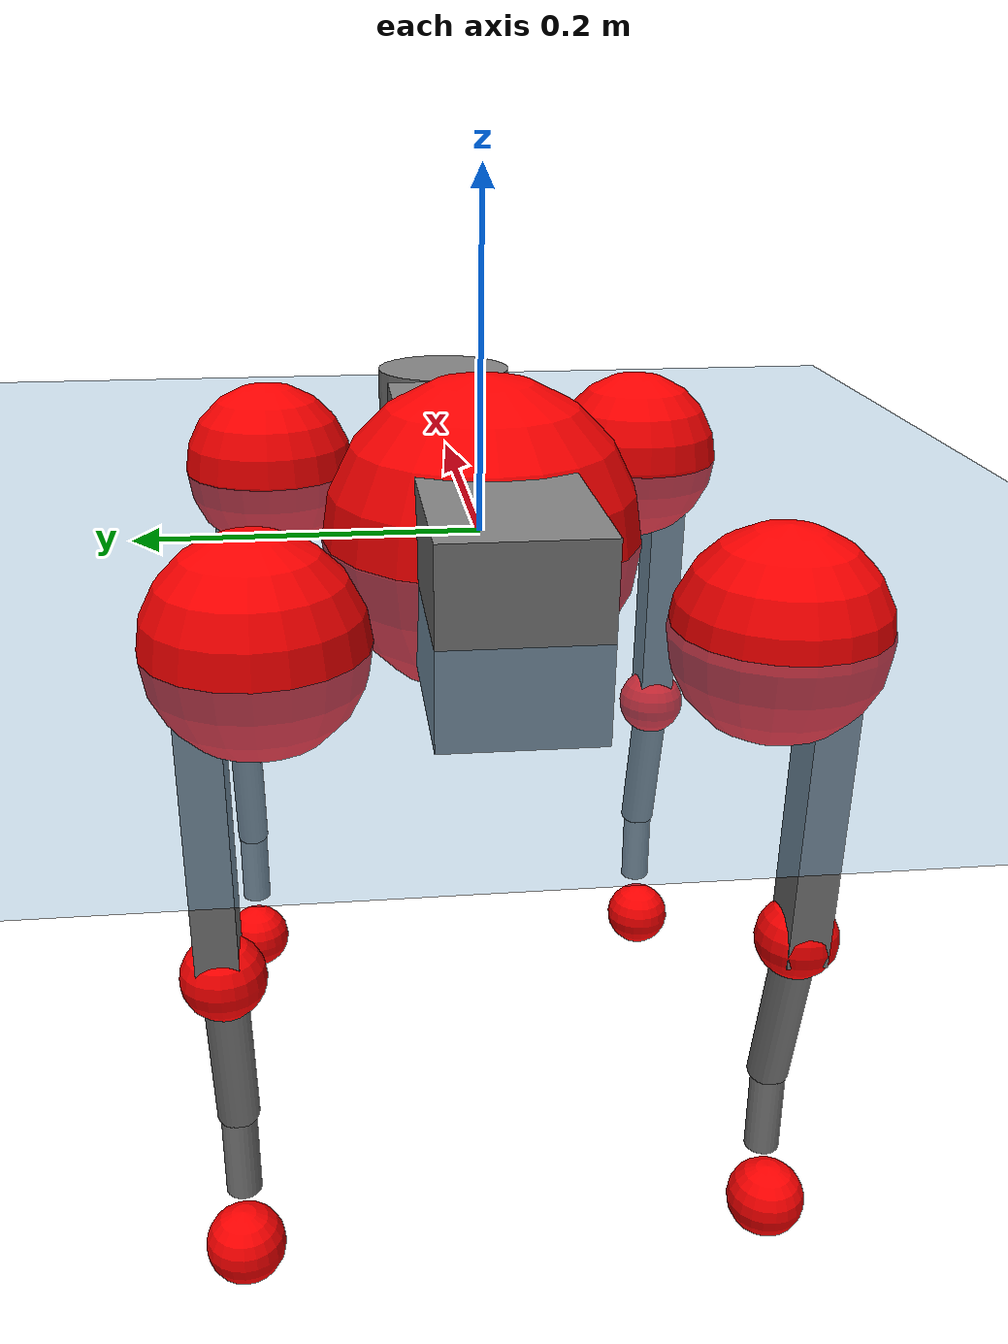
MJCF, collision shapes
<mujoco model="go2">
  <compiler angle="radian" assetdir="assets" balanceinertia="true" inertiafromgeom="false"/>

  <option timestep="0.005" density="1.2" viscosity="2e-05"/>

  <size nkey="1"/>

  <visual>
    <quality shadowsize="8192"/>
    <map shadowclip="0.5"/>
  </visual>

  <default>
    <default class="/">
      <geom contype="0" conaffinity="0" group="1" solref="-1000 -80"/>
      <site size="0.01 0.005 0.005" group="5"/>
      <general forcelimited="true" biastype="affine" gainprm="20" biasprm="0 -20 -0.5"/>
      <default class="go2">
        <joint armature="0.01" damping="0.01" frictionloss="0.2"/>
        <geom condim="1" margin="0.001"/>
        <default class="visual">
          <geom type="mesh" group="2"/>
        </default>
        <default class="collision">
          <geom group="3"/>
          <default class="foot">
            <geom size="0.022 0 0" condim="6" priority="1" friction="0.8 0.02 0.01" solimp="0.015 1 0.022"/>
          </default>
        </default>
        <default class="reward_collision_sphere">
          <geom group="5" rgba="1 0 0 1"/>
        </default>
      </default>
    </default>
  </default>

  <asset>
    <texture type="skybox" colorspace="auto" name="//unnamed_texture_0" builtin="gradient" rgb1="0.95 0.95 0.95" rgb2="0.95 0.95 0.95" width="100" height="600"/>
    <texture type="2d" colorspace="auto" name="texplane" builtin="checker" rgb1="0.345 0.575 0.748" rgb2="0.345 0.575 0.748" markrgb="1 1 1" width="512" height="512"/>
    <material name="MatPlane" class="/" texture="texplane" texuniform="true" texrepeat="2 2" specular="0.9"/>
    <material name="metal" class="/" rgba="0.9 0.95 0.95 1"/>
    <material name="black" class="/" rgba="0 0 0 1"/>
    <material name="white" class="/"/>
    <material name="gray" class="/" rgba="0.671705 0.692426 0.77427 1"/>
    <mesh name="base_0" class="/" file="base_0.obj"/>
    <mesh name="base_1" class="/" file="base_1.obj"/>
    <mesh name="base_2" class="/" file="base_2.obj"/>
    <mesh name="base_3" class="/" file="base_3.obj"/>
    <mesh name="base_4" class="/" file="base_4.obj"/>
    <mesh name="hip_0" class="/" file="hip_0.obj"/>
    <mesh name="hip_1" class="/" file="hip_1.obj"/>
    <mesh name="thigh_0" class="/" file="thigh_0.obj"/>
    <mesh name="thigh_1" class="/" file="thigh_1.obj"/>
    <mesh name="thigh_mirror_0" class="/" file="thigh_mirror_0.obj"/>
    <mesh name="thigh_mirror_1" class="/" file="thigh_mirror_1.obj"/>
    <mesh name="calf_0" class="/" file="calf_0.obj"/>
    <mesh name="calf_1" class="/" file="calf_1.obj"/>
    <mesh name="calf_mirror_0" class="/" file="calf_mirror_0.obj"/>
    <mesh name="calf_mirror_1" class="/" file="calf_mirror_1.obj"/>
    <mesh name="foot" class="/" file="foot.obj"/>
  </asset>

  <worldbody>
    <geom name="floor" class="/" size="100 100 0.125" type="plane" group="0" material="MatPlane"/>
    <light name="toplight_shadow" class="/" pos="0 0 5" dir="0.0990148 0.0990148 -0.990148" type="directional" ambient="0.04 0.04 0.04" diffuse="0.55 0.55 0.55" specular="0.12 0.12 0.12"/>
    <light name="toplight_fill" class="/" pos="0 0 5" dir="0.0990148 0.0990148 -0.990148" type="directional" castshadow="false" ambient="0.04 0.04 0.04" diffuse="0.3 0.3 0.3" specular="0.08 0.08 0.08"/>
    <body name="trunk" childclass="go2" pos="-0.00381128 -0.000564335 -0.00193948" quat="0.999999 4.82692e-05 0.000868829 -0.00092655">
      <inertial pos="0.0204639 0.002249 -0.00626193" quat="-0.0079917 0.719288 -0.000232951 0.694666" mass="6.07058" diaginertia="0.0414805 0.157652 0.0136784"/>
      <joint name="//unnamed_joint_0" type="free" armature="0" damping="0" frictionloss="0"/>
      <geom name="//unnamed_geom_1" class="visual" material="black" mesh="base_0"/>
      <geom name="//unnamed_geom_2" class="visual" material="black" mesh="base_1"/>
      <geom name="//unnamed_geom_3" class="visual" material="black" mesh="base_2"/>
      <geom name="//unnamed_geom_4" class="visual" material="white" mesh="base_3"/>
      <geom name="//unnamed_geom_5" class="visual" material="gray" mesh="base_4"/>
      <geom name="trunk_1" class="collision" size="0.175273 0.0435621 0.0531131" type="box"/>
      <geom name="trunk_2" class="collision" size="0.0465904 0.0419314" pos="0.234314 0 0.00879658" type="cylinder"/>
      <geom name="trunk_3" class="collision" size="0.043795" pos="0.240892 0 -0.0527795"/>
      <geom name="//unnamed_geom_9" class="reward_collision_sphere" size="0.0931809"/>
      <geom name="//unnamed_geom_10" class="reward_collision_sphere" size="0.0559085" pos="0.230204 0 -0.0395846"/>
      <site name="imu" pos="-0.0251704 0.00724061 0.026412" size="0.00931809"/>
      <camera name="track" pos="0 -2.18722 0" quat="0.707107 0.707107 0 0" mode="trackcom"/>
      <camera name="ego_camera" pos="0.256513 0 0.0395846" quat="-0.5 -0.5 0.5 0.5"/>
      <body name="FL_hip" pos="0.157307 0.0484254 0.00208274" quat="0.999999 0.000280053 -0.000333607 0.000968383">
        <inertial pos="-0.00152798 0.0023247 -0.00252563" quat="0.499404 0.501541 0.505607 0.49337" mass="0.551893" diaginertia="0.000325747 0.000981123 0.000252882"/>
        <joint name="FL_hip_joint" pos="0 0 0" axis="0.999802 0.0189688 -0.00603077" range="-1.1161 1.02047" armature="0.0096493" damping="0.0183553" frictionloss="0.18467"/>
        <geom name="//unnamed_geom_11" class="visual" material="metal" mesh="hip_0"/>
        <geom name="//unnamed_geom_12" class="visual" material="gray" mesh="hip_1"/>
        <geom name="//unnamed_geom_13" class="collision" size="0.0428632 0.0186362" pos="0 0.087489 0" quat="0.707107 0.707107 0 0" type="cylinder"/>
        <geom name="//unnamed_geom_14" class="reward_collision_sphere" size="0.0559085" pos="0 0.0765529 0"/>
        <body name="FL_thigh" pos="0.00133887 0.103763 0.00108375" quat="1 0.00062533 7.68199e-05 -0.000262743">
          <inertial pos="-0.00318807 -0.0250337 -0.0264037" quat="0.830014 0.0847254 -0.0210157 0.550869" mass="0.929254" diaginertia="0.00228841 0.00922193 0.000439182"/>
          <joint name="FL_thigh_joint" pos="0 0 0" axis="8.42426e-05 0.999926 -0.0121815" stiffness="0.0229198" range="-1.52893 3.48345" armature="0.00827537" damping="0" frictionloss="0.162461"/>
          <geom name="//unnamed_geom_15" class="visual" material="metal" mesh="thigh_0"/>
          <geom name="//unnamed_geom_16" class="visual" material="gray" mesh="thigh_1"/>
          <geom name="//unnamed_geom_17" class="collision" size="0.0992376 0.0114147 0.0158407" pos="0 0 -0.0936835" quat="0.707107 0 0.707107 0" type="box"/>
          <body name="FL_calf" pos="0.00012672 0.00227877 -0.188708" quat="1 -0.000342958 0.000185869 -0.000149706">
            <inertial pos="0.00621995 0.000198618 -0.123765" quat="0.711107 0.0131664 -0.0070668 0.702925" mass="0.194277" diaginertia="0.00052348 0.00219035 2.74193e-05"/>
            <joint name="FL_calf_joint" pos="0 0 0" axis="-0.00929164 0.999795 -0.0180131" stiffness="0.00262856" range="-2.67472 -0.822905" armature="0.0100285" damping="0.0130258" frictionloss="0.201349"/>
            <geom name="//unnamed_geom_18" class="visual" material="gray" mesh="calf_0"/>
            <geom name="//unnamed_geom_19" class="visual" material="black" mesh="calf_1"/>
            <geom name="FL_calf0" class="collision" size="0.0111817 0.0559085" pos="0.00657724 0 -0.0527795" quat="0.994493 0 -0.104807 0" type="cylinder"/>
            <geom name="//unnamed_geom_21" class="collision" size="0.0102499 0.0302838" pos="0.0164431 0 -0.130189" quat="0.999688 0 0.0249974 0" type="cylinder"/>
            <geom name="//unnamed_geom_22" class="visual" pos="0 0 -0.187367" quat="1 0 0 0" material="black" mesh="foot"/>
            <geom name="FL_foot" class="foot" size="0.0157764" pos="-0.00164431 0 -0.187367"/>
            <geom name="//unnamed_geom_24" class="reward_collision_sphere" size="0.0232952"/>
            <geom name="//unnamed_geom_25" class="reward_collision_sphere" size="0.0232952" pos="-0.00164431 0 -0.187367"/>
            <site name="FL_foot" class="foot" pos="-0.00164431 0 -0.187367" size="0.00931809"/>
          </body>
        </body>
      </body>
      <body name="FR_hip" pos="0.161875 -0.0487129 0.00305527" quat="1 0.00024802 0.000227289 -0.000199684">
        <inertial pos="-0.00274339 -0.000281688 0.000132697" quat="0.494348 0.503487 0.502479 0.499636" mass="0.553571" diaginertia="0.0003278 0.000914919 0.000246563"/>
        <joint name="FR_hip_joint" pos="0 0 0" axis="0.999967 0.00615065 -0.00525292" range="-0.999202 1.05659" armature="0.0104387" damping="0.0151425" frictionloss="0.199214"/>
        <geom name="//unnamed_geom_26" class="visual" pos="0 1.86388e-09 7.99459e-08" quat="4.63268e-05 1 0 0" material="metal" mesh="hip_0"/>
        <geom name="//unnamed_geom_27" class="visual" pos="0 3.02158e-09 -1.97737e-07" quat="4.63268e-05 1 0 0" material="gray" mesh="hip_1"/>
        <geom name="//unnamed_geom_28" class="collision" size="0.0428632 0.0186362" pos="0 -0.087489 0" quat="0.707107 0.707107 0 0" type="cylinder"/>
        <geom name="//unnamed_geom_29" class="reward_collision_sphere" size="0.0559085" pos="0 -0.0765529 0"/>
        <body name="FR_thigh" pos="-0.000244091 -0.100848 0.00201546" quat="1 -4.18077e-05 -0.000116033 -0.000182849">
          <inertial pos="-0.00156906 0.0248369 -0.029675" quat="0.550886 -0.0213093 0.087447 0.829713" mass="0.920115" diaginertia="0.00215568 0.00863522 0.000445408"/>
          <joint name="FR_thigh_joint" pos="0 0 0" axis="-0.00737409 -0.999882 0.0134556" range="-3.52747 1.55156" armature="0.00908927" damping="0.000606805" frictionloss="0.206326"/>
          <geom name="//unnamed_geom_30" class="visual" material="metal" mesh="thigh_mirror_0"/>
          <geom name="//unnamed_geom_31" class="visual" material="gray" mesh="thigh_mirror_1"/>
          <geom name="//unnamed_geom_32" class="collision" size="0.0992376 0.0114147 0.0158407" pos="0 0 -0.0936835" quat="0.707107 0 0.707107 0" type="box"/>
          <body name="FR_calf" pos="-0.00256827 0.000677746 -0.189707" quat="1 0.000186294 -8.48235e-06 7.61131e-05">
            <inertial pos="0.0057626 0.00128029 -0.125206" quat="0.704749 -0.00527556 -0.00828974 0.709388" mass="0.196264" diaginertia="0.000559327 0.00229418 2.81174e-05"/>
            <joint name="FR_calf_joint" pos="0 0 0" axis="0.00288942 -0.999916 0.0126251" stiffness="0.0135108" range="0.846979 2.72362" armature="0.00808051" damping="0.00430372" frictionloss="0.16465"/>
            <geom name="//unnamed_geom_33" class="visual" material="gray" mesh="calf_mirror_0"/>
            <geom name="//unnamed_geom_34" class="visual" material="black" mesh="calf_mirror_1"/>
            <geom name="FR_calf0" class="collision" size="0.0121135 0.0559085" pos="0.00822156 0 -0.0527795" quat="0.995004 0 -0.0998334 0" type="cylinder"/>
            <geom name="//unnamed_geom_36" class="collision" size="0.0102499 0.0302838" pos="0.0164431 0 -0.130189" quat="0.999688 0 0.0249974 0" type="cylinder"/>
            <geom name="//unnamed_geom_37" class="visual" pos="0 0 -0.187367" quat="1 0 0 0" material="black" mesh="foot"/>
            <geom name="FR_foot" class="foot" size="0.0203019" pos="-0.00164431 0 -0.187367"/>
            <geom name="//unnamed_geom_39" class="reward_collision_sphere" size="0.0232952"/>
            <geom name="//unnamed_geom_40" class="reward_collision_sphere" size="0.0232952" pos="-0.00164431 0 -0.187367"/>
            <site name="FR_foot" class="foot" pos="-0.00164431 0 -0.187367" size="0.00931809"/>
          </body>
        </body>
      </body>
      <body name="RL_hip" pos="-0.159256 0.0502287 0.000612273" quat="1 5.85396e-05 -2.73144e-05 2.91924e-05">
        <inertial pos="0.00664678 -0.000811556 0.000213291" quat="0.491223 0.510063 0.504536 0.493943" mass="0.54582" diaginertia="0.000346416 0.000967953 0.000253248"/>
        <joint name="RL_hip_joint" pos="0 0 0" axis="-0.999715 0.0215549 -0.0102345" range="-1.07957 1.02348" armature="0.00977056" damping="0" frictionloss="0.168058"/>
        <geom name="//unnamed_geom_41" class="visual" pos="5.00936e-10 0 9.81949e-08" quat="4.63268e-05 0 1 0" material="metal" mesh="hip_0"/>
        <geom name="//unnamed_geom_42" class="visual" pos="8.12077e-10 0 8.70849e-08" quat="4.63268e-05 0 1 0" material="gray" mesh="hip_1"/>
        <geom name="//unnamed_geom_43" class="collision" size="0.0428632 0.0186362" pos="0 0.087489 0" quat="0.707107 0.707107 0 0" type="cylinder"/>
        <geom name="//unnamed_geom_44" class="reward_collision_sphere" size="0.0559085" pos="0 0.0765529 0"/>
        <body name="RL_thigh" pos="-0.000984481 0.106145 -0.00218368" quat="1 6.9797e-05 -0.000185315 -0.000761681">
          <inertial pos="-0.00282344 -0.0237515 -0.0264938" quat="0.828794 0.0731617 -0.0241543 0.554224" mass="0.92589" diaginertia="0.00230614 0.00968845 0.000481586"/>
          <joint name="RL_thigh_joint" pos="0 0 0" axis="-0.00302778 0.999995 0.00111545" range="-0.516954 4.53737" armature="0.00914138" damping="0" frictionloss="0.187642"/>
          <geom name="//unnamed_geom_45" class="visual" material="metal" mesh="thigh_0"/>
          <geom name="//unnamed_geom_46" class="visual" material="gray" mesh="thigh_1"/>
          <geom name="//unnamed_geom_47" class="collision" size="0.0992376 0.0114147 0.0158407" pos="0 0 -0.0936835" quat="0.707107 0 0.707107 0" type="box"/>
          <body name="RL_calf" pos="-0.000206957 -0.00168978 -0.184661" quat="0.999999 -0.000803745 -0.000857545 0.000603415">
            <inertial pos="0.0026192 -0.00406165 -0.124132" quat="0.712226 0.00415852 -0.0115723 0.701843" mass="0.201657" diaginertia="0.000567371 0.00237053 3.01792e-05"/>
            <joint name="RL_calf_joint" pos="0 0 0" axis="0.0211916 0.999672 0.0143644" stiffness="0.0214942" range="-2.7318 -0.796539" armature="0.00987445" damping="0.00469894" frictionloss="0.156817"/>
            <geom name="//unnamed_geom_48" class="visual" material="gray" mesh="calf_0"/>
            <geom name="//unnamed_geom_49" class="visual" material="black" mesh="calf_1"/>
            <geom name="RL_calf0" class="collision" size="0.0121135 0.0559085" pos="0.00822156 0 -0.0527795" quat="0.995004 0 -0.0998334 0" type="cylinder"/>
            <geom name="//unnamed_geom_51" class="collision" size="0.0102499 0.0302838" pos="0.0164431 0 -0.130189" quat="0.999688 0 0.0249974 0" type="cylinder"/>
            <geom name="//unnamed_geom_52" class="visual" pos="0 0 -0.187367" quat="1 0 0 0" material="black" mesh="foot"/>
            <geom name="RL_foot" class="foot" size="0.0186187" pos="-0.00164431 0 -0.187367"/>
            <geom name="//unnamed_geom_54" class="reward_collision_sphere" size="0.0232952"/>
            <geom name="//unnamed_geom_55" class="reward_collision_sphere" size="0.0232952" pos="-0.00164431 0 -0.187367"/>
            <site name="RL_foot" class="foot" pos="-0.00164431 0 -0.187367" size="0.00931809"/>
          </body>
        </body>
      </body>
      <body name="RR_hip" pos="-0.156122 -0.0527063 -0.00459624" quat="0.999999 0.000732136 0.000166642 -0.00138711">
        <inertial pos="0.00122657 -0.00227184 0.00289636" quat="0.499875 0.496983 0.498441 0.504667" mass="0.549629" diaginertia="0.000334341 0.00093363 0.000249104"/>
        <joint name="RR_hip_joint" pos="0 0 0" axis="-0.999843 -0.0165002 -0.00648057" range="-0.994532 1.08575" armature="0.00834179" damping="0" frictionloss="0.207236"/>
        <geom name="//unnamed_geom_56" class="visual" pos="-4.91538e-10 1.86388e-09 1.82491e-08" quat="2.14617e-09 4.63268e-05 4.63268e-05 -1" material="metal" mesh="hip_0"/>
        <geom name="//unnamed_geom_57" class="visual" pos="-8.35322e-10 3.02158e-09 2.84822e-07" quat="2.14617e-09 4.63268e-05 4.63268e-05 -1" material="gray" mesh="hip_1"/>
        <geom name="//unnamed_geom_58" class="collision" size="0.0428632 0.0186362" pos="0 -0.087489 0" quat="0.707107 0.707107 0 0" type="cylinder"/>
        <geom name="//unnamed_geom_59" class="reward_collision_sphere" size="0.0559085" pos="0 -0.0765529 0"/>
        <body name="RR_thigh" pos="-0.00161878 -0.105902 0.00385278" quat="1 -0.000747218 0.000452079 0.000196971">
          <inertial pos="-0.00486143 0.0236981 -0.0287235" quat="0.552223 -0.0157694 0.0836421 0.82934" mass="0.949098" diaginertia="0.00217603 0.00920664 0.000460185"/>
          <joint name="RR_thigh_joint" pos="0 0 0" axis="-0.00967069 -0.9999 -0.0102728" stiffness="0.00609504" range="-4.53353 0.493047" armature="0.00875276" damping="0.0236399" frictionloss="0.207772"/>
          <geom name="//unnamed_geom_60" class="visual" material="metal" mesh="thigh_mirror_0"/>
          <geom name="//unnamed_geom_61" class="visual" material="gray" mesh="thigh_mirror_1"/>
          <geom name="//unnamed_geom_62" class="collision" size="0.0992376 0.0114147 0.0158407" pos="0 0 -0.0936835" quat="0.707107 0 0.707107 0" type="box"/>
          <body name="RR_calf" pos="0.00431052 0.000181492 -0.185745" quat="1 -4.2669e-06 -9.72686e-06 -3.31476e-06">
            <inertial pos="0.00514464 0.00242937 -0.123897" quat="0.701123 -0.0051212 -0.00496656 0.713005" mass="0.194193" diaginertia="0.000577938 0.0022767 2.76862e-05"/>
            <joint name="RR_calf_joint" pos="0 0 0" axis="0.00949668 -0.999953 0.00178627" range="0.791261 2.74262" armature="0.00810705" damping="0" frictionloss="0.1613"/>
            <geom name="//unnamed_geom_63" class="visual" material="gray" mesh="calf_mirror_0"/>
            <geom name="//unnamed_geom_64" class="visual" material="black" mesh="calf_mirror_1"/>
            <geom name="RR_calf0" class="collision" size="0.0121135 0.0559085" pos="0.00822156 0 -0.0527795" quat="0.995004 0 -0.0998334 0" type="cylinder"/>
            <geom name="//unnamed_geom_66" class="collision" size="0.0102499 0.0302838" pos="0.0164431 0 -0.130189" quat="0.999688 0 0.0249974 0" type="cylinder"/>
            <geom name="//unnamed_geom_67" class="visual" pos="0 0 -0.187367" quat="1 0 0 0" material="black" mesh="foot"/>
            <geom name="RR_foot" class="foot" size="0.0211854" pos="-0.00164431 0 -0.187367"/>
            <geom name="//unnamed_geom_69" class="reward_collision_sphere" size="0.0232952"/>
            <geom name="//unnamed_geom_70" class="reward_collision_sphere" size="0.0232952" pos="-0.00164431 0 -0.187367"/>
            <site name="RR_foot" class="foot" pos="-0.00164431 0 -0.187367" size="0.00931809"/>
          </body>
        </body>
      </body>
    </body>
  </worldbody>

  <contact>
    <pair class="/" geom1="floor" geom2="FL_foot" name="//unnamed_contact_0"/>
    <pair class="/" geom1="floor" geom2="FR_foot" name="//unnamed_contact_1"/>
    <pair class="/" geom1="floor" geom2="RL_foot" name="//unnamed_contact_2"/>
    <pair class="/" geom1="floor" geom2="RR_foot" name="//unnamed_contact_3"/>
  </contact>

  <actuator>
    <general name="FL_hip" class="/" joint="FL_hip_joint" forcerange="-21.6277 21.6277" gainprm="19.2354" biasprm="0 -19.2354 -0.466111"/>
    <general name="FL_thigh" class="/" joint="FL_thigh_joint" forcerange="-20.8469 20.8469" gainprm="19.2354" biasprm="0 -19.2354 -0.466111"/>
    <general name="FL_calf" class="/" joint="FL_calf_joint" forcerange="-39.2959 39.2959" gainprm="19.2354" biasprm="0 -19.2354 -0.466111"/>
    <general name="FR_hip" class="/" joint="FR_hip_joint" forcerange="-22.2509 22.2509" gainprm="19.2354" biasprm="0 -19.2354 -0.466111"/>
    <general name="FR_thigh" class="/" joint="FR_thigh_joint" forcerange="-23.3331 23.3331" gainprm="19.2354" biasprm="0 -19.2354 -0.466111"/>
    <general name="FR_calf" class="/" joint="FR_calf_joint" forcerange="-43.4678 43.4678" gainprm="19.2354" biasprm="0 -19.2354 -0.466111"/>
    <general name="RL_hip" class="/" joint="RL_hip_joint" forcerange="-19.5955 19.5955" gainprm="19.2354" biasprm="0 -19.2354 -0.466111"/>
    <general name="RL_thigh" class="/" joint="RL_thigh_joint" forcerange="-20.6542 20.6542" gainprm="19.2354" biasprm="0 -19.2354 -0.466111"/>
    <general name="RL_calf" class="/" joint="RL_calf_joint" forcerange="-46.7938 46.7938" gainprm="19.2354" biasprm="0 -19.2354 -0.466111"/>
    <general name="RR_hip" class="/" joint="RR_hip_joint" forcerange="-21.76 21.76" gainprm="19.2354" biasprm="0 -19.2354 -0.466111"/>
    <general name="RR_thigh" class="/" joint="RR_thigh_joint" forcerange="-19.9811 19.9811" gainprm="19.2354" biasprm="0 -19.2354 -0.466111"/>
    <general name="RR_calf" class="/" joint="RR_calf_joint" forcerange="-46.7059 46.7059" gainprm="19.2354" biasprm="0 -19.2354 -0.466111"/>
  </actuator>

  <sensor>
    <gyro site="imu" name="imu_angular_velocity"/>
    <velocimeter site="imu" name="imu_linear_velocity"/>
    <framelinvel objtype="site" objname="FL_foot" name="FL_foot_global_linear_velocity"/>
    <framelinvel objtype="site" objname="FR_foot" name="FR_foot_global_linear_velocity"/>
    <framelinvel objtype="site" objname="RL_foot" name="RL_foot_global_linear_velocity"/>
    <framelinvel objtype="site" objname="RR_foot" name="RR_foot_global_linear_velocity"/>
  </sensor>

  <keyframe>
    <key name="home" qpos="0 0 0.325 1 0 0 0 0.1 0.8 -1.5 -0.1 -0.8 1.5 -0.1 0.8 -1.5 0.1 -0.8 1.5"/>
  </keyframe>
</mujoco>
